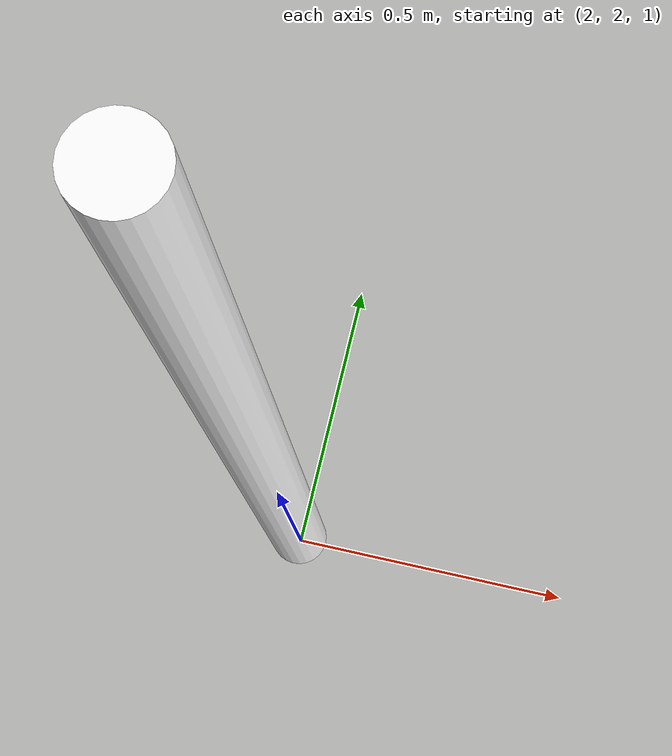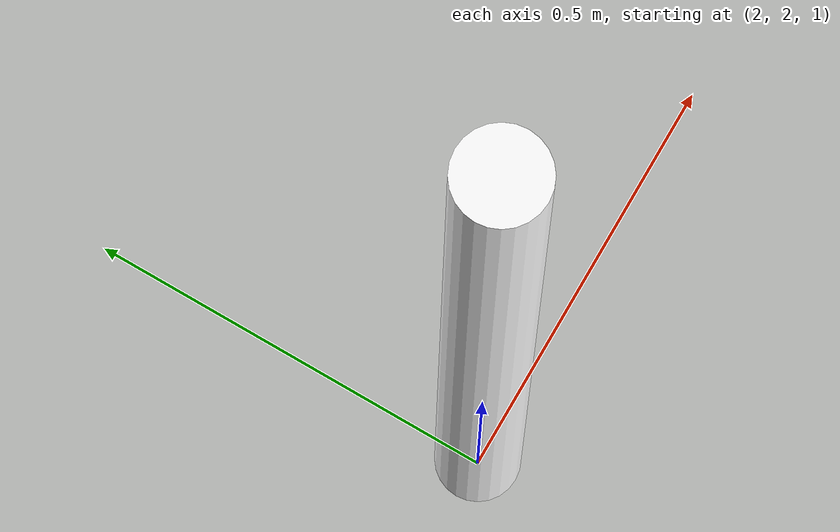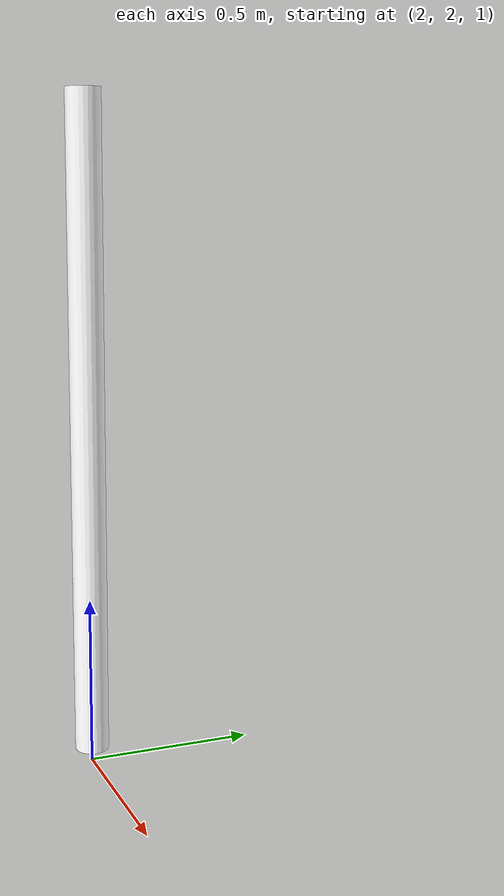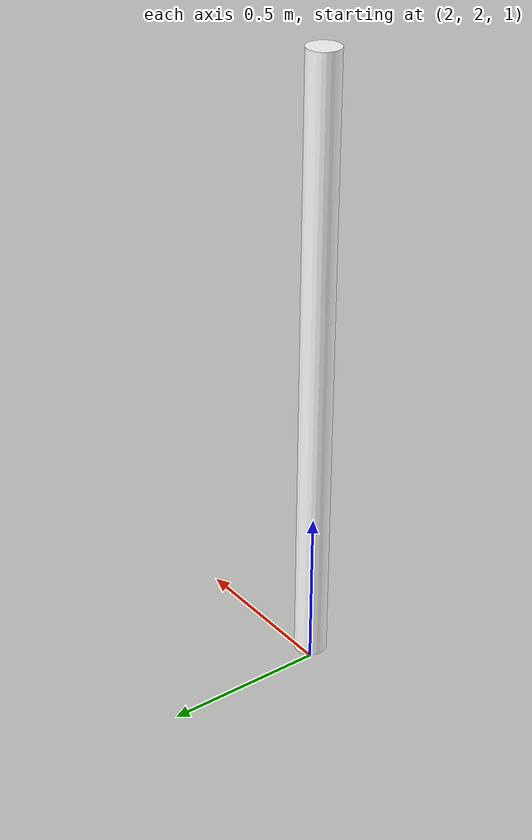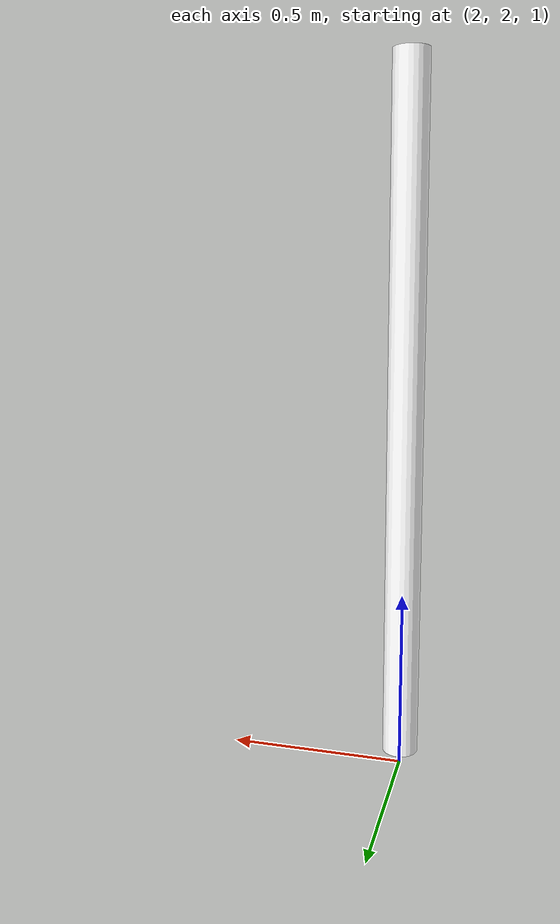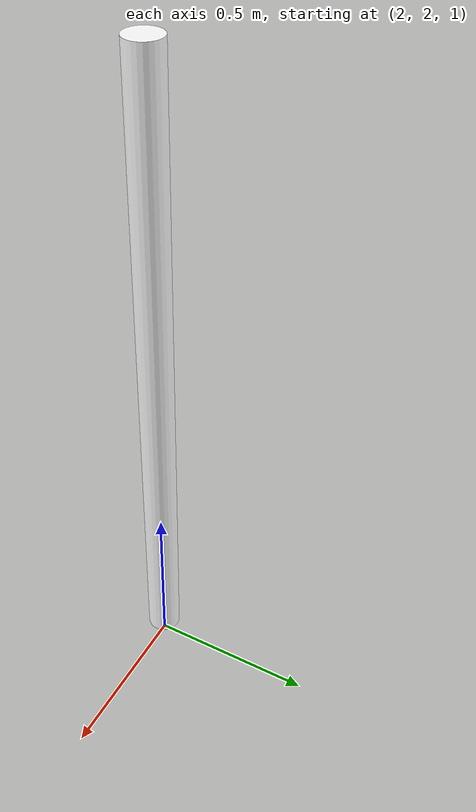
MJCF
<mujoco model="rod">
  <worldbody>
    <!-- Falling cylindrical rod -->
    <body name="rod" pos="2 2 2">
      <freejoint name="rod_joint" />
      <geom
                name="rod_geom"
                type="cylinder"
                size="0.05 0.96"
                rgba="1 1 1 1"
                mass="2"
            />
      <inertial pos="0 0 0" mass="2" diaginertia="0.167 0.167 0.0025" />
    </body>

  </worldbody>

</mujoco>
